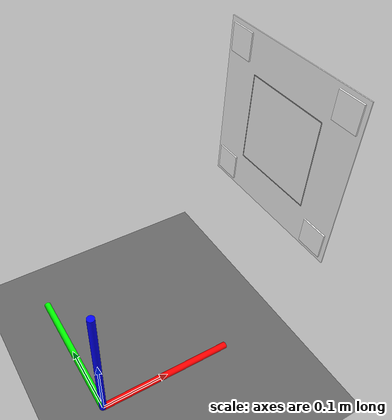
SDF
<?xml version="1.0"?>
<sdf version="1.8">
  <world name="visual_servoing_world">

    <plugin filename="gz-sim-physics-system" name="gz::sim::systems::Physics"/>
    <plugin filename="gz-sim-user-commands-system" name="gz::sim::systems::UserCommands"/>
    <plugin filename="gz-sim-scene-broadcaster-system" name="gz::sim::systems::SceneBroadcaster"/>
    <plugin filename="gz-sim-sensors-system" name="gz::sim::systems::Sensors">
      <render_engine>ogre2</render_engine>
    </plugin>

    <!-- Physics settings -->
    <physics name="default_physics" default="true" type="ode">
      <max_step_size>0.001</max_step_size>
      <real_time_factor>1.0</real_time_factor>
      <real_time_update_rate>1000</real_time_update_rate>
      <ode>
        <solver>
          <type>quick</type>
          <iters>50</iters>
          <sor>1.3</sor>
        </solver>
      </ode>
    </physics>

    <!-- Scene settings with bright lighting for ArUco detection -->
    <scene>
      <ambient>1.0 1.0 1.0 1.0</ambient>
      <background>0.8 0.8 0.8 1.0</background>
      <shadows>false</shadows>
      <grid>true</grid>
    </scene>

    <!-- Strong directional light for good ArUco visibility -->
    <light type="directional" name="sun">
      <cast_shadows>false</cast_shadows>
      <pose>0 0 10 0 0 0</pose>
      <diffuse>1.0 1.0 1.0 1</diffuse>
      <specular>0.3 0.3 0.3 1</specular>
      <attenuation>
        <range>1000</range>
        <constant>0.9</constant>
        <linear>0.01</linear>
        <quadratic>0.001</quadratic>
      </attenuation>
      <direction>0 0 -1</direction>
    </light>

    <!-- Additional fill light -->
    <light name="fill_light" type="directional">
      <pose>2 2 5 0 0 0</pose>
      <diffuse>0.8 0.8 0.8 1</diffuse>
      <specular>0.2 0.2 0.2 1</specular>
      <direction>-0.5 -0.5 -1</direction>
      <cast_shadows>false</cast_shadows>
    </light>

    <!-- Ground plane -->
    <model name="ground_plane">
      <static>true</static>
      <link name="link">
        <collision name="collision">
          <geometry>
            <plane>
              <normal>0 0 1</normal>
              <size>10 10</size>
            </plane>
          </geometry>
        </collision>
        <visual name="visual">
          <geometry>
            <plane>
              <normal>0 0 1</normal>
              <size>10 10</size>
            </plane>
          </geometry>
          <material>
            <ambient>0.4 0.4 0.4 1</ambient>
            <diffuse>0.4 0.4 0.4 1</diffuse>
          </material>
        </visual>
      </link>
    </model>

    <!-- Bảng workspace tay mới: mặt bảng (0.5mm trước tâm tấm giấy) cách trục J1
         22.5cm, quay về -X. SINH bởi scripts/rl/newarm_make_sim.py -->
    <include>
      <uri>model://newarm_board</uri>
      <name>newarm_board</name>
      <pose>0.2255 -0.00185 0.355382 0 0 0</pose>
    </include>

    <!-- World coordinate frame visualization -->
    <model name="world_frame">
      <static>true</static>
      <pose>0 0 0 0 0 0</pose>

      <!-- X axis (Red) -->
      <link name="x_axis">
        <pose>0.1 0 0 0 1.5708 0</pose>
        <visual name="x_visual">
          <geometry>
            <cylinder>
              <radius>0.005</radius>
              <length>0.2</length>
            </cylinder>
          </geometry>
          <material>
            <ambient>1 0 0 1</ambient>
            <diffuse>1 0 0 1</diffuse>
          </material>
        </visual>
      </link>

      <!-- Y axis (Green) -->
      <link name="y_axis">
        <pose>0 0.1 0 1.5708 0 0</pose>
        <visual name="y_visual">
          <geometry>
            <cylinder>
              <radius>0.005</radius>
              <length>0.2</length>
            </cylinder>
          </geometry>
          <material>
            <ambient>0 1 0 1</ambient>
            <diffuse>0 1 0 1</diffuse>
          </material>
        </visual>
      </link>

      <!-- Z axis (Blue) -->
      <link name="z_axis">
        <pose>0 0 0.1 0 0 0</pose>
        <visual name="z_visual">
          <geometry>
            <cylinder>
              <radius>0.005</radius>
              <length>0.2</length>
            </cylinder>
          </geometry>
          <material>
            <ambient>0 0 1 1</ambient>
            <diffuse>0 0 1 1</diffuse>
          </material>
        </visual>
      </link>
    </model>

    <!-- GUI camera position for good view -->
    <gui fullscreen='false'>
      <camera name='user_camera'>
        <!-- Side view to see robot and board -->
        <pose>0.55 -0.55 0.65 0 0.45 2.2</pose>
        <view_controller>orbit</view_controller>
        <projection_type>perspective</projection_type>
      </camera>
    </gui>

  </world>
</sdf>

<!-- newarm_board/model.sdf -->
<!-- SINH TỰ ĐỘNG bởi scripts/rl/newarm_make_sim.py
     Bảng workspace in thật của tay mới: marker 30mm, tâm marker ±75mm,
     vùng vẽ 100x100mm (khung xám). Không có collision: bút đi xuyên qua bảng. -->
<sdf version="1.8">
  <model name="newarm_board">
    <static>true</static>
    <link name="board_link">
      <visual name="paper">
        <geometry><box><size>0.001 0.19 0.19</size></box></geometry>
        <material>
          <ambient>0.98 0.98 0.98 1</ambient>
          <diffuse>0.98 0.98 0.98 1</diffuse>
          <specular>0.05 0.05 0.05 1</specular>
        </material>
      </visual>
      <visual name="marker_0">
        <pose>-0.0012 0.075 0.075 0 0 1.5708</pose>
        <geometry><box><size>0.03 0.002 0.03</size></box></geometry>
        <material>
          <diffuse>1 1 1 1</diffuse>
          <specular>0.1 0.1 0.1 1</specular>
          <pbr><metal><albedo_map>model://aruco_marker_0/materials/textures/marker_0.png</albedo_map></metal></pbr>
        </material>
      </visual>
      <visual name="marker_1">
        <pose>-0.0012 -0.075 0.075 0 0 1.5708</pose>
        <geometry><box><size>0.03 0.002 0.03</size></box></geometry>
        <material>
          <diffuse>1 1 1 1</diffuse>
          <specular>0.1 0.1 0.1 1</specular>
          <pbr><metal><albedo_map>model://aruco_marker_1/materials/textures/marker_1.png</albedo_map></metal></pbr>
        </material>
      </visual>
      <visual name="marker_2">
        <pose>-0.0012 -0.075 -0.075 0 0 1.5708</pose>
        <geometry><box><size>0.03 0.002 0.03</size></box></geometry>
        <material>
          <diffuse>1 1 1 1</diffuse>
          <specular>0.1 0.1 0.1 1</specular>
          <pbr><metal><albedo_map>model://aruco_marker_2/materials/textures/marker_2.png</albedo_map></metal></pbr>
        </material>
      </visual>
      <visual name="marker_3">
        <pose>-0.0012 0.075 -0.075 0 0 1.5708</pose>
        <geometry><box><size>0.03 0.002 0.03</size></box></geometry>
        <material>
          <diffuse>1 1 1 1</diffuse>
          <specular>0.1 0.1 0.1 1</specular>
          <pbr><metal><albedo_map>model://aruco_marker_3/materials/textures/marker_3.png</albedo_map></metal></pbr>
        </material>
      </visual>
      <visual name="draw_zone_0">
        <pose>-0.0006 0 0.05 0 0 0</pose>
        <geometry><box><size>0.0002 0.1 0.001</size></box></geometry>
        <material><ambient>0.6 0.6 0.6 1</ambient><diffuse>0.6 0.6 0.6 1</diffuse></material>
      </visual>
      <visual name="draw_zone_1">
        <pose>-0.0006 0 -0.05 0 0 0</pose>
        <geometry><box><size>0.0002 0.1 0.001</size></box></geometry>
        <material><ambient>0.6 0.6 0.6 1</ambient><diffuse>0.6 0.6 0.6 1</diffuse></material>
      </visual>
      <visual name="draw_zone_2">
        <pose>-0.0006 0.05 0 0 0 0</pose>
        <geometry><box><size>0.0002 0.001 0.1</size></box></geometry>
        <material><ambient>0.6 0.6 0.6 1</ambient><diffuse>0.6 0.6 0.6 1</diffuse></material>
      </visual>
      <visual name="draw_zone_3">
        <pose>-0.0006 -0.05 0 0 0 0</pose>
        <geometry><box><size>0.0002 0.001 0.1</size></box></geometry>
        <material><ambient>0.6 0.6 0.6 1</ambient><diffuse>0.6 0.6 0.6 1</diffuse></material>
      </visual>
    </link>
  </model>
</sdf>
